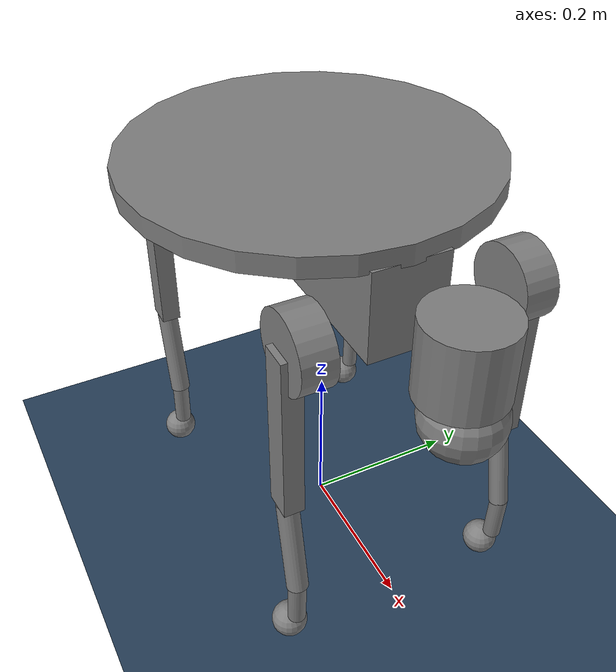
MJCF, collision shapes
<mujoco model="go2 weight scene">
  <include file="go2_weight.xml"/>

  <statistic center="0 0 0.1" extent="0.8"/>

  <visual>
    <headlight diffuse="0.6 0.6 0.6" ambient="0.3 0.3 0.3" specular="0 0 0"/>
    <rgba haze="0.15 0.25 0.35 1"/>
    <global azimuth="-130" elevation="-20"/>
  </visual>

  <asset>
    <texture type="skybox" builtin="gradient" rgb1="0.3 0.5 0.7" rgb2="0 0 0" width="512" height="3072"/>
    <texture type="2d" name="groundplane" builtin="checker" mark="edge" rgb1="0.2 0.3 0.4" rgb2="0.1 0.2 0.3"
      markrgb="0.8 0.8 0.8" width="300" height="300"/>
    <material name="groundplane" texture="groundplane" texuniform="true" texrepeat="5 5" reflectance="0.2"/>
  </asset>

  <worldbody>
    <!-- Original: moving camera that tracks the COM -->
    <camera name="track" mode="trackcom"
            pos="0.0 -2 0.4"
            xyaxes="1 0 0  0 0 1"/>

    <!-- New: frozen camera, same initial placement but static -->
    <camera name="track_static"
            pos="0.0 -1.5 0.4"
            zaxis="0.0 -0.988936 0.148340"
            fovy="55"/>

    <!-- Your chase camera, unchanged -->
    <camera name="chase"
            pos="-1. -0.5 1.0"
            xyaxes="0.447 -0.894 0   0.498 0.249 0.830"
            fovy="55"/>

    <light pos="0 0 1.5" dir="0 0 -1" directional="true"/>
    <geom name="floor" size="0 0 0.05" type="plane" material="groundplane"/>
  </worldbody>
</mujoco>

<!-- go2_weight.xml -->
<mujoco model="go2">
  <compiler angle="radian" meshdir="assets" autolimits="true"/>

  <option cone="elliptic" impratio="100"/>

  <default>
    <default class="go2">
      <geom friction="0.6" margin="0.001" condim="1"/>
      <joint axis="0 1 0" damping="2" armature="0.01" frictionloss="0.2"/>
      <motor ctrlrange="-23.7 23.7"/>
      <default class="abduction">
        <joint axis="1 0 0" range="-1.0472 1.0472"/>
      </default>
      <default class="hip">
        <default class="front_hip">
          <joint range="-1.5708 3.4907"/>
        </default>
        <default class="back_hip">
          <joint range="-0.5236 4.5379"/>
        </default>
      </default>
      <default class="knee">
        <joint range="-2.7227 -0.83776"/>
        <motor ctrlrange="-45.43 45.43"/>
      </default>
      <default class="visual">
        <geom type="mesh" contype="0" conaffinity="0" group="2"/>
      </default>
      <default class="collision">
        <geom group="3"/>
        <default class="foot">
          <geom size="0.022" pos="-0.002 0 -0.213" priority="1" solimp="0.015 1 0.022" condim="6"
            friction="0.8 0.02 0.01"/>
        </default>
      </default>
    </default>
  </default>

  <asset>
    <material name="metal" rgba=".9 .95 .95 1"/>
    <material name="black" rgba="0 0 0 1"/>
    <material name="white" rgba="1 1 1 1"/>
    <material name="gray" rgba="0.671705 0.692426 0.774270 1"/>

    <mesh file="base_0.obj"/>
    <mesh file="base_1.obj"/>
    <mesh file="base_2.obj"/>
    <mesh file="base_3.obj"/>
    <mesh file="base_4.obj"/>
    <mesh file="hip_0.obj"/>
    <mesh file="hip_1.obj"/>
    <mesh file="thigh_0.obj"/>
    <mesh file="thigh_1.obj"/>
    <mesh file="thigh_mirror_0.obj"/>
    <mesh file="thigh_mirror_1.obj"/>
    <mesh file="calf_0.obj"/>
    <mesh file="calf_1.obj"/>
    <mesh file="calf_mirror_0.obj"/>
    <mesh file="calf_mirror_1.obj"/>
    <mesh file="foot.obj"/>

    <!-- Payload mesh -->
    <!-- original dims 45x45x2.9mm -> scaled up to meters would be 0.001, but that is too small...-->
    <mesh name="weight_plate" file="45_lb_plate.stl" scale="0.004 0.004 0.004"/>
  </asset>

  <worldbody>
    <body name="base" pos="0 0 0.445" childclass="go2">
      <inertial pos="0.021112 0 -0.005366" quat="-0.000543471 0.713435 -0.00173769 0.700719" mass="6.921"
        diaginertia="0.107027 0.0980771 0.0244531"/>
      <freejoint/>
      <geom mesh="base_0" material="black" class="visual"/>
      <geom mesh="base_1" material="black" class="visual"/>
      <geom mesh="base_2" material="black" class="visual"/>
      <geom mesh="base_3" material="white" class="visual"/>
      <geom mesh="base_4" material="gray" class="visual"/>
      <geom size="0.1881 0.04675 0.057" type="box" class="collision"/>
      <geom size="0.05 0.045" pos="0.285 0 0.01" type="cylinder" class="collision"/>
      <geom size="0.047" pos="0.293 0 -0.06" class="collision"/>
      <site name="imu" pos="-0.02557 0 0.04232"/>
      <body name="FL_hip" pos="0.1934 0.0465 0">
        <inertial pos="-0.0054 0.00194 -0.000105" quat="0.497014 0.499245 0.505462 0.498237" mass="0.678"
          diaginertia="0.00088403 0.000596003 0.000479967"/>
        <joint name="FL_hip_joint" class="abduction"/>
        <geom mesh="hip_0" material="metal" class="visual"/>
        <geom mesh="hip_1" material="gray" class="visual"/>
        <geom size="0.046 0.02" pos="0 0.08 0" quat="1 1 0 0" type="cylinder" class="collision"/>
        <body name="FL_thigh" pos="0 0.0955 0">
          <inertial pos="-0.00374 -0.0223 -0.0327" quat="0.829533 0.0847635 -0.0200632 0.551623" mass="1.152"
            diaginertia="0.00594973 0.00584149 0.000878787"/>
          <joint name="FL_thigh_joint" class="front_hip"/>
          <geom mesh="thigh_0" material="metal" class="visual"/>
          <geom mesh="thigh_1" material="gray" class="visual"/>
          <geom size="0.1065 0.01225 0.017" pos="0 0 -0.1065" quat="0.707107 0 0.707107 0" type="box" class="collision"/>
          <body name="FL_calf" pos="0 0 -0.213">
            <inertial pos="0.00629595 -0.000622121 -0.141417" quat="0.710672 0.00154099 -0.00450087 0.703508"
              mass="0.241352" diaginertia="0.0014901 0.00146356 5.31397e-05"/>
            <joint name="FL_calf_joint" class="knee"/>
            <geom mesh="calf_0" material="gray" class="visual"/>
            <geom mesh="calf_1" material="black" class="visual"/>
            <geom size="0.012 0.06" pos="0.008 0 -0.06" quat="0.994493 0 -0.104807 0" type="cylinder" class="collision"/>
            <geom size="0.011 0.0325" pos="0.02 0 -0.148" quat="0.999688 0 0.0249974 0" type="cylinder" class="collision"/>
            <geom pos="0 0 -0.213" mesh="foot" class="visual" material="black"/>
            <geom name="FL" class="foot"/>
          </body>
        </body>
      </body>
      <body name="FR_hip" pos="0.1934 -0.0465 0">
        <inertial pos="-0.0054 -0.00194 -0.000105" quat="0.498237 0.505462 0.499245 0.497014" mass="0.678"
          diaginertia="0.00088403 0.000596003 0.000479967"/>
        <joint name="FR_hip_joint" class="abduction"/>
        <geom mesh="hip_0" material="metal" class="visual" quat="4.63268e-05 1 0 0"/>
        <geom mesh="hip_1" material="gray" class="visual" quat="4.63268e-05 1 0 0"/>
        <geom size="0.046 0.02" pos="0 -0.08 0" quat="0.707107 0.707107 0 0" type="cylinder" class="collision"/>
        <body name="FR_thigh" pos="0 -0.0955 0">
          <inertial pos="-0.00374 0.0223 -0.0327" quat="0.551623 -0.0200632 0.0847635 0.829533" mass="1.152"
            diaginertia="0.00594973 0.00584149 0.000878787"/>
          <joint name="FR_thigh_joint" class="front_hip"/>
          <geom mesh="thigh_mirror_0" material="metal" class="visual"/>
          <geom mesh="thigh_mirror_1" material="gray" class="visual"/>
          <geom size="0.1065 0.01225 0.017" pos="0 0 -0.1065" quat="0.707107 0 0.707107 0" type="box" class="collision"/>
          <body name="FR_calf" pos="0 0 -0.213">
            <inertial pos="0.00629595 0.000622121 -0.141417" quat="0.703508 -0.00450087 0.00154099 0.710672"
              mass="0.241352" diaginertia="0.0014901 0.00146356 5.31397e-05"/>
            <joint name="FR_calf_joint" class="knee"/>
            <geom mesh="calf_mirror_0" material="gray" class="visual"/>
            <geom mesh="calf_mirror_1" material="black" class="visual"/>
            <geom size="0.013 0.06" pos="0.01 0 -0.06" quat="0.995004 0 -0.0998334 0" type="cylinder" class="collision"/>
            <geom size="0.011 0.0325" pos="0.02 0 -0.148" quat="0.999688 0 0.0249974 0" type="cylinder" class="collision"/>
            <geom pos="0 0 -0.213" mesh="foot" class="visual" material="black"/>
            <geom name="FR" class="foot"/>
          </body>
        </body>
      </body>
      <body name="RL_hip" pos="-0.1934 0.0465 0">
        <inertial pos="0.0054 0.00194 -0.000105" quat="0.505462 0.498237 0.497014 0.499245" mass="0.678"
          diaginertia="0.00088403 0.000596003 0.000479967"/>
        <joint name="RL_hip_joint" class="abduction"/>
        <geom mesh="hip_0" material="metal" class="visual" quat="4.63268e-05 0 1 0"/>
        <geom mesh="hip_1" material="gray" class="visual" quat="4.63268e-05 0 1 0"/>
        <geom size="0.046 0.02" pos="0 0.08 0" quat="0.707107 0.707107 0 0" type="cylinder" class="collision"/>
        <body name="RL_thigh" pos="0 0.0955 0">
          <inertial pos="-0.00374 -0.0223 -0.0327" quat="0.829533 0.0847635 -0.0200632 0.551623" mass="1.152"
            diaginertia="0.00594973 0.00584149 0.000878787"/>
          <joint name="RL_thigh_joint" class="back_hip"/>
          <geom mesh="thigh_0" material="metal" class="visual"/>
          <geom mesh="thigh_1" material="gray" class="visual"/>
          <geom size="0.1065 0.01225 0.017" pos="0 0 -0.1065" quat="0.707107 0 0.707107 0" type="box" class="collision"/>
          <body name="RL_calf" pos="0 0 -0.213">
            <inertial pos="0.00629595 -0.000622121 -0.141417" quat="0.710672 0.00154099 -0.00450087 0.703508"
              mass="0.241352" diaginertia="0.0014901 0.00146356 5.31397e-05"/>
            <joint name="RL_calf_joint" class="knee"/>
            <geom mesh="calf_0" material="gray" class="visual"/>
            <geom mesh="calf_1" material="black" class="visual"/>
            <geom size="0.013 0.06" pos="0.01 0 -0.06" quat="0.995004 0 -0.0998334 0" type="cylinder" class="collision"/>
            <geom size="0.011 0.0325" pos="0.02 0 -0.148" quat="0.999688 0 0.0249974 0" type="cylinder" class="collision"/>
            <geom pos="0 0 -0.213" mesh="foot" class="visual" material="black"/>
            <geom name="RL" class="foot"/>
          </body>
        </body>
      </body>
      <body name="RR_hip" pos="-0.1934 -0.0465 0">
        <inertial pos="0.0054 -0.00194 -0.000105" quat="0.499245 0.497014 0.498237 0.505462" mass="0.678"
          diaginertia="0.00088403 0.000596003 0.000479967"/>
        <joint name="RR_hip_joint" class="abduction"/>
        <geom mesh="hip_0" material="metal" class="visual" quat="2.14617e-09 4.63268e-05 4.63268e-05 -1"/>
        <geom mesh="hip_1" material="gray" class="visual" quat="2.14617e-09 4.63268e-05 4.63268e-05 -1"/>
        <geom size="0.046 0.02" pos="0 -0.08 0" quat="0.707107 0.707107 0 0" type="cylinder" class="collision"/>
        <body name="RR_thigh" pos="0 -0.0955 0">
          <inertial pos="-0.00374 0.0223 -0.0327" quat="0.551623 -0.0200632 0.0847635 0.829533" mass="1.152"
            diaginertia="0.00594973 0.00584149 0.000878787"/>
          <joint name="RR_thigh_joint" class="back_hip"/>
          <geom mesh="thigh_mirror_0" material="metal" class="visual"/>
          <geom mesh="thigh_mirror_1" material="gray" class="visual"/>
          <geom size="0.1065 0.01225 0.017" pos="0 0 -0.1065" quat="0.707107 0 0.707107 0" type="box" class="collision"/>
          <body name="RR_calf" pos="0 0 -0.213">
            <inertial pos="0.00629595 0.000622121 -0.141417" quat="0.703508 -0.00450087 0.00154099 0.710672"
              mass="0.241352" diaginertia="0.0014901 0.00146356 5.31397e-05"/>
            <joint name="RR_calf_joint" class="knee"/>
            <geom mesh="calf_mirror_0" material="gray" class="visual"/>
            <geom mesh="calf_mirror_1" material="black" class="visual"/>
            <geom size="0.013 0.06" pos="0.01 0 -0.06" quat="0.995004 0 -0.0998334 0" type="cylinder" class="collision"/>
            <geom size="0.011 0.0325" pos="0.02 0 -0.148" quat="0.999688 0 0.0249974 0" type="cylinder" class="collision"/>
            <geom pos="0 0 -0.213" mesh="foot" class="visual" material="black"/>
            <geom name="RR" class="foot"/>
          </body>
        </body>
      </body>

      <!-- Payload -->
      <!-- stl form https://www.printables.com/model/35673-45-lb-olympic-weightlifting-plate#preview.file.t6iz  -->
      <body name="payload" pos="-0.035 -0.0 0.065">
        <!-- Optional explicit inertial (so mass changes are easy).
            Start with something modest; you can overwrite at runtime. -->
        <inertial mass="5.0" diaginertia="0.05 0.05 0.05" pos="0 0 0"/>

        <!-- Visual STL (no contacts) -->
        <geom name="payload_vis" type="mesh" mesh="weight_plate" class="visual"/>

        <!-- Collision proxy (recommended): thin cylinder roughly matching the plate -->
        <!-- size = radius half_height ; tweak to your plate dimensions -->
        <geom name="payload_col" type="cylinder" size="0.225 0.0125" class="collision"/>
      </body>
    </body>
  </worldbody>

  <actuator>
    <motor class="abduction" name="FL_hip" joint="FL_hip_joint"/>
    <motor class="hip" name="FL_thigh" joint="FL_thigh_joint"/>
    <motor class="knee" name="FL_calf" joint="FL_calf_joint"/>
    <motor class="abduction" name="FR_hip" joint="FR_hip_joint"/>
    <motor class="hip" name="FR_thigh" joint="FR_thigh_joint"/>
    <motor class="knee" name="FR_calf" joint="FR_calf_joint"/>
    <motor class="abduction" name="RL_hip" joint="RL_hip_joint"/>
    <motor class="hip" name="RL_thigh" joint="RL_thigh_joint"/>
    <motor class="knee" name="RL_calf" joint="RL_calf_joint"/>
    <motor class="abduction" name="RR_hip" joint="RR_hip_joint"/>
    <motor class="hip" name="RR_thigh" joint="RR_thigh_joint"/>
    <motor class="knee" name="RR_calf" joint="RR_calf_joint"/>
  </actuator>

  <keyframe>
    <!-- keyframe for home position, low standing position -->
    <key name="home"
      qpos="0 0 0.27  1 0 0 0
          0 0.9 -1.8
          0 0.9 -1.8
          0 0.9 -1.8
          0 0.9 -1.8
          "
      ctrl="0 0.9 -1.8 0 0.9 -1.8 0 0.9 -1.8 0 0.9 -1.8"/>
  </keyframe>

  <keyframe>
    <!-- base: x y z  qw qx qy qz -->
    <!-- then joints in model order: FL(hip,thigh,calf) FR(...) RL(...) RR(...) -->
    <key name="stand"
        qpos="0 0 0.32   1 0 0 0
              -0.0 0.5 -1.5
              -0.0 0.5 -1.5
               0.0 0.5 -1.5
              -0.0 0.5 -1.5
             "
        ctrl="0 0 0 0 0 0 0 0 0 0 0 0"/>
  </keyframe>

  <keyframe>
    <!-- base: x y z  qw qx qy qz -->
    <!-- joints in model order -->
    <key name="tiptoe"
        qpos="0 0 0.39   1 0 0 0
              -0.0 0.2 -0.9
              -0.0 0.2 -0.9
               0.0 0.5 -1.0
              -0.0 0.5 -1.0
              "
        ctrl="0 0 0 0 0 0 0 0 0 0 0 0"/>
  </keyframe>

  <keyframe>
    <!-- base: x y z  qw qx qy qz -->
    <!-- then joints in model order: FL(hip,thigh,calf) FR(...) RL(...) RR(...) -->
    <key name="sit"
        qpos="0 0 0.098   1 0 -0.02 0
              -0.0 1.2 -2.73
              -0.0 1.2 -2.73
              0.1 1.22 -2.73
              -0.1 1.22 -2.73
              "
        ctrl="0 0 0 0 0 0 0 0 0 0 0 0"/>
  </keyframe>

</mujoco>
